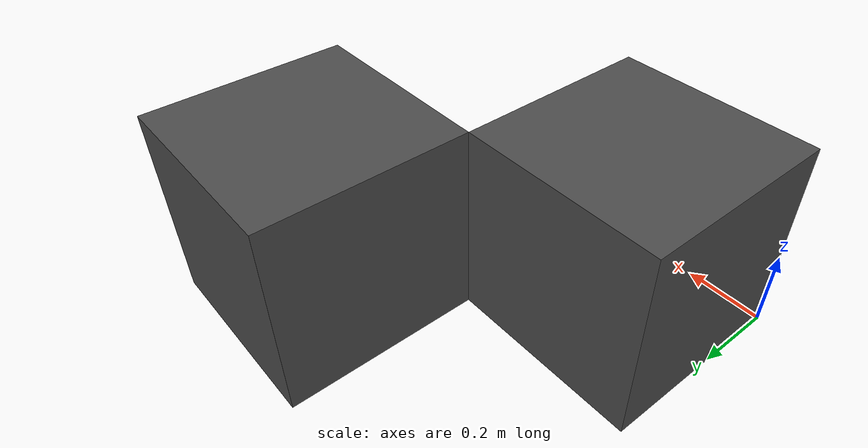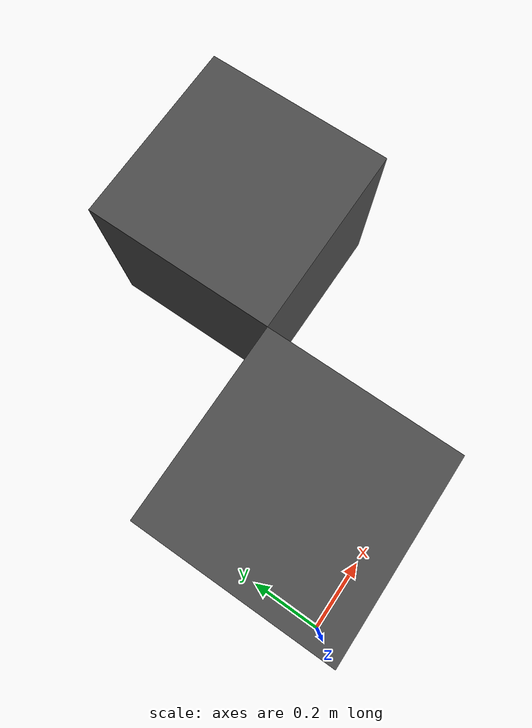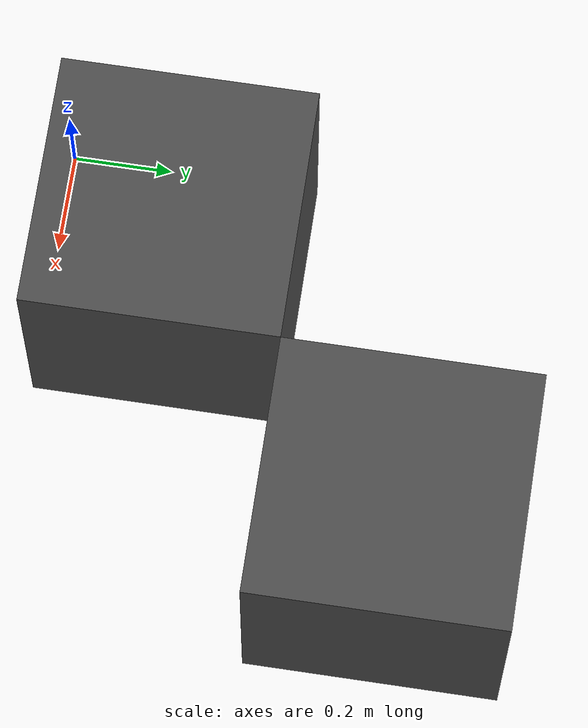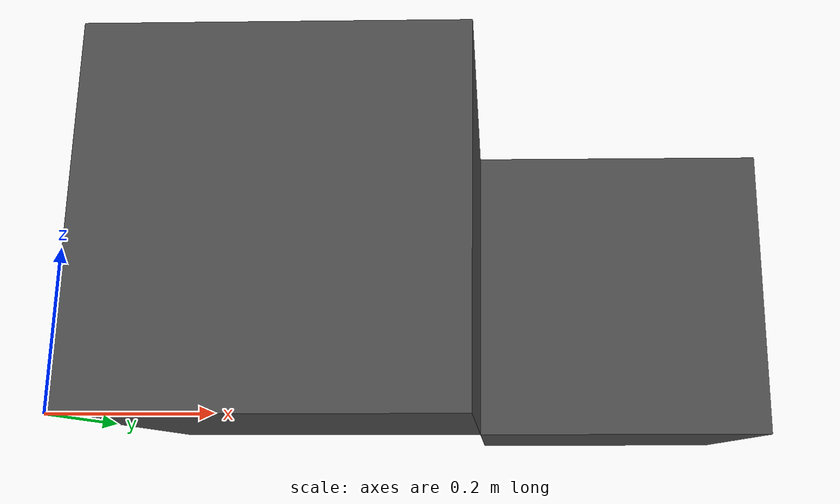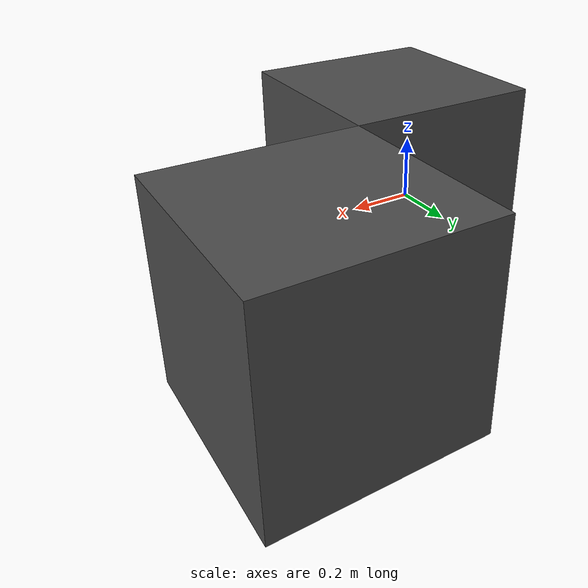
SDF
<?xml version="1.0"?>
<sdf version="1.7">
  <!-- This model is used for testing generation of voxel-based environment
  models and planning on voxelized environments. -->
  <model name="voxel_test1">
    <link name="voxel_test1">
      <pose>0 0 0 0 0 0</pose>
      <inertial>
        <!--These values are arbitrary. This is not intended for simulation.-->
        <mass>1.0</mass>
        <inertia>
          <ixx>1.0</ixx>
          <ixy>0</ixy>
          <ixz>0</ixz>
          <iyy>1.0</iyy>
          <iyz>0</iyz>
          <izz>1.0</izz>
        </inertia>
      </inertial>
      <visual name="block1_visual">
        <pose>0.25 0.25 0.25 0 0 0</pose>
        <geometry>
          <box>
            <size>0.5 0.5 0.5</size>
          </box>
        </geometry>
        <material>
          <diffuse>0.3 0.3 0.3 1</diffuse>
        </material>
      </visual>
      <collision name="block1_collision">
        <pose>0.25 0.25 0.25 0 0 0</pose>
        <geometry>
          <box>
            <size>0.5 0.5 0.5</size>
          </box>
        </geometry>
      </collision>
      <visual name="block2_visual">
        <pose>0.75 0.75 0.25 0 0 0</pose>
        <geometry>
          <box>
            <size>0.5 0.5 0.5</size>
          </box>
        </geometry>
        <material>
          <diffuse>0.3 0.3 0.3 1</diffuse>
        </material>
      </visual>
      <collision name="block2_collision">
        <pose>0.75 0.75 0.25 0 0 0</pose>
        <geometry>
          <box>
            <size>0.5 0.5 0.5</size>
          </box>
        </geometry>
      </collision>
    </link>
  </model>
</sdf>
